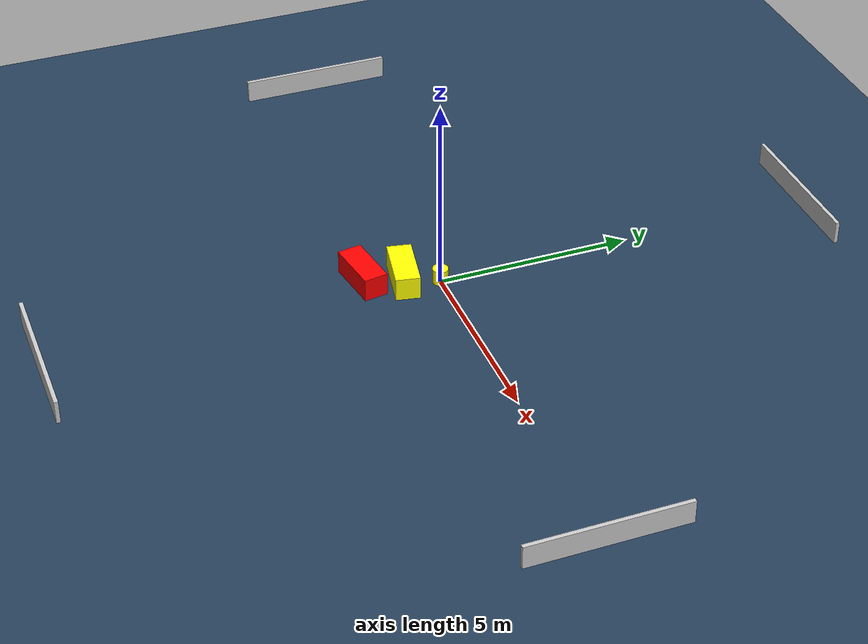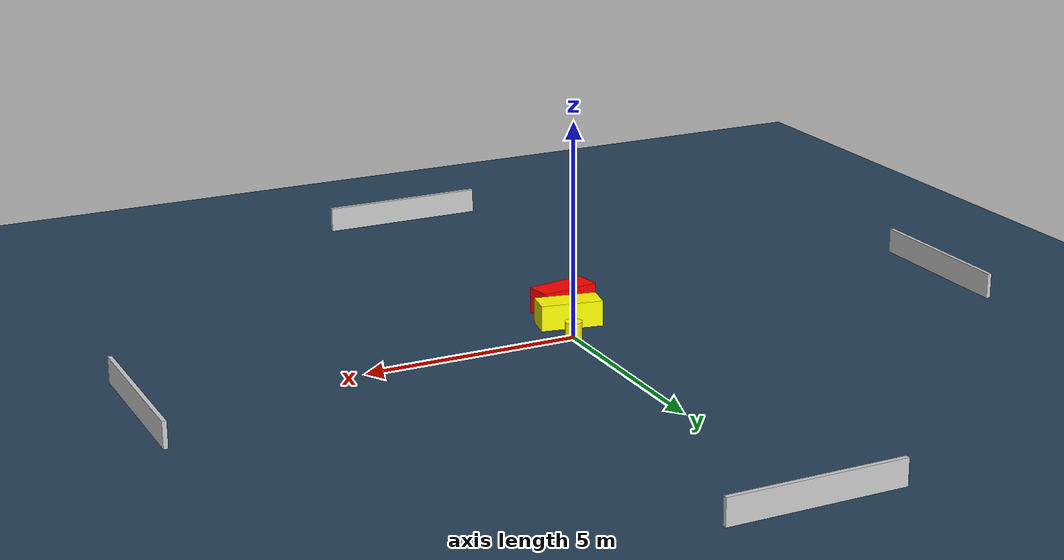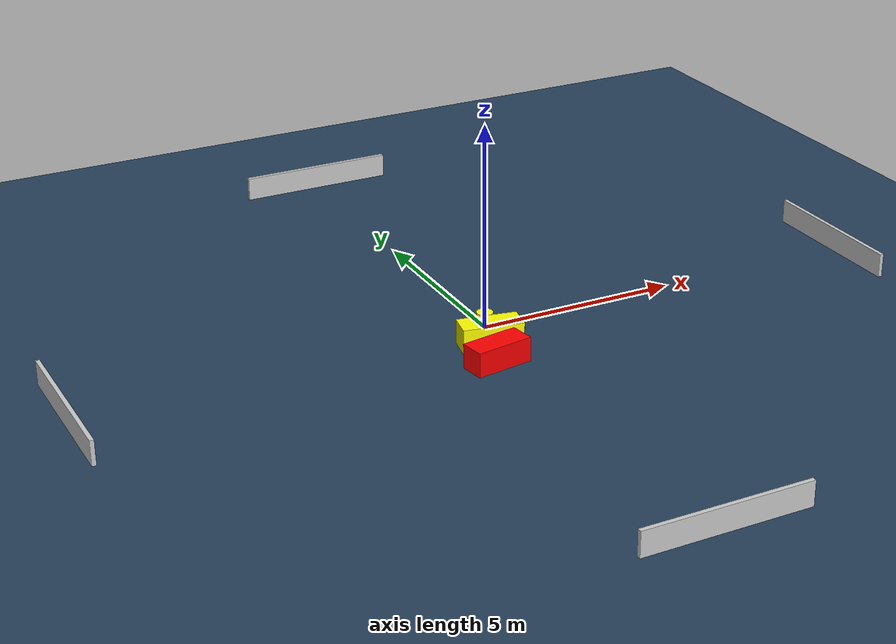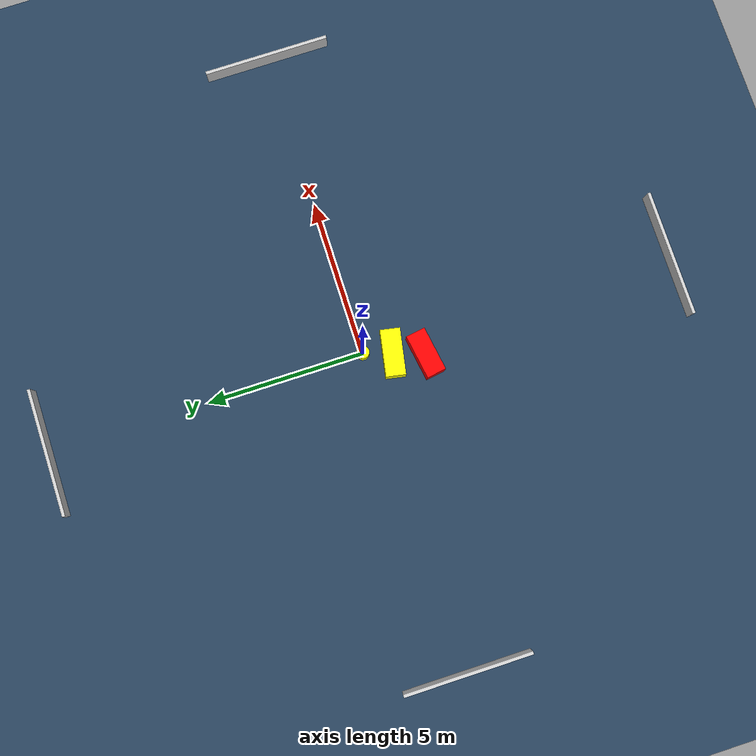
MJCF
<?xml version="1.0" ?>
<mujoco model="generated_environment">
  <option timestep="0.01" integrator="RK4" cone="elliptic"/>
  <default>
    <geom density="1"/>
  </default>
  <asset>
    <texture builtin="gradient" height="3072" name="skybox" rgb1="0.3 0.5 0.7" rgb2="0 0 0" type="skybox" width="512"/>
    <texture builtin="checker" height="300" name="groundplane" rgb1="0.2 0.3 0.4" rgb2="0.1 0.2 0.3" type="2d" width="300"/>
    <material name="groundplane" reflectance="0.2" texrepeat="5 5" texture="groundplane"/>
  </asset>
  <worldbody>
    <light dir="0 0 -1" directional="true" pos="0 0 1.5"/>
    <geom condim="3" friction="0.5 0.005 0.001" material="groundplane" name="floor" pos="0 0 0" size="0 0 0.05" type="plane"/>
    <body name="walls">
      <geom name="wall_1" condim="4" pos="-10.0 0.0 0.3" rgba="0.800000011920929 0.800000011920929 0.800000011920929 1.0" size="0.05 2.0 0.3" type="box"/>
      <geom name="wall_2" condim="4" pos="10.0 0.0 0.3" rgba="0.800000011920929 0.800000011920929 0.800000011920929 1.0" size="0.05 2.0 0.3" type="box"/>
      <geom name="wall_3" condim="4" pos="0.0 -10.0 0.3" rgba="0.800000011920929 0.800000011920929 0.800000011920929 1.0" size="2.0 0.05 0.3" type="box"/>
      <geom name="wall_4" condim="4" pos="0.0 10.0 0.3" rgba="0.800000011920929 0.800000011920929 0.800000011920929 1.0" size="2.0 0.05 0.3" type="box"/>
    </body>
    <body name="robot">
      <joint name="joint_x" type="slide" pos="0 0 0" axis="1 0 0"/>
      <joint name="joint_y" type="slide" pos="0 0 0" axis="0 1 0"/>
      <geom name="robot" type="cylinder" pos="0.0 0.0 0.2" size="0.2 0.2 0.0" mass="5.0" friction="1.0 0.005 0.0001" condim="4" rgba="1.0 1.0 0.0 1.0"/>
    </body>
    <body name="obstacle_1_movable">
      <geom name="obstacle_1_movable" condim="4" pos="-0.3097243032250837 -0.8595183390607791 0.3" euler="0 0 349.3671813830364" friction="0.0 0.005 0.001" rgba="1.0 1.0 0.0 1.0" size="0.7282510244886073 0.31177128459721104 0.3" type="box" mass="0.1"/>
      <joint type="free"/>
    </body>
    <body name="obstacle_2_static">
      <geom name="obstacle_2_static" condim="4" pos="-0.6342427123685764 -1.8095802657803672 0.3" euler="0 0 9.030774763472582" friction="0.0 0.005 0.001" rgba="1.0 0.0 0.0 1.0" size="0.7100652402885426 0.310581025626925 0.3" type="box"/>
    </body>
  </worldbody>
  <actuator>
    <motor name="actuator_x" joint="joint_x" gear="1" ctrlrange="-1 1"/>
    <motor name="actuator_y" joint="joint_y" gear="1" ctrlrange="-1 1"/>
  </actuator>
</mujoco>
